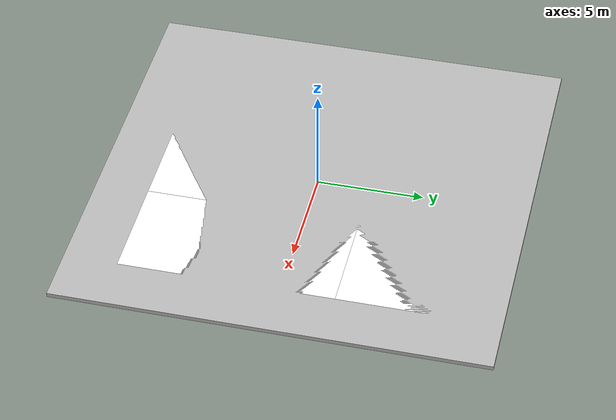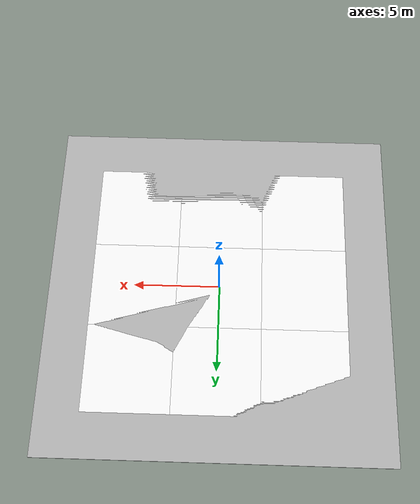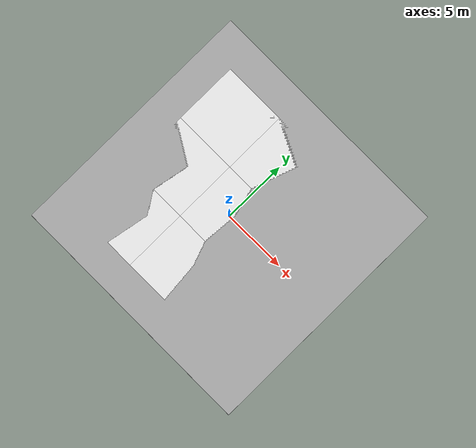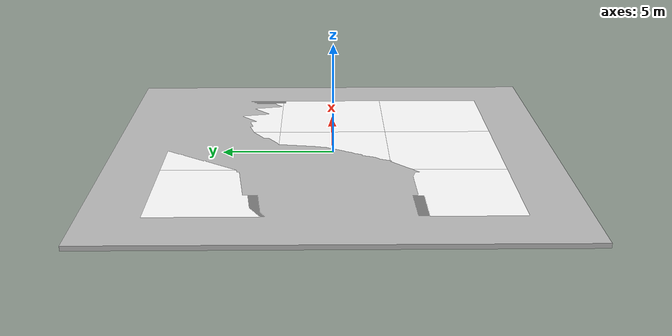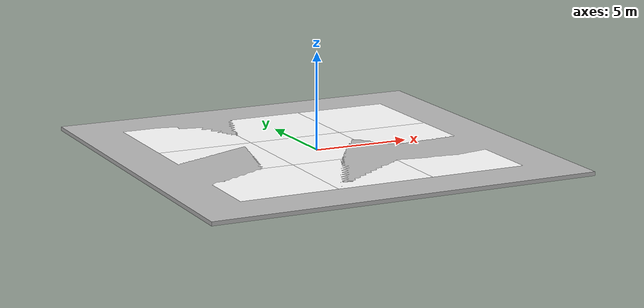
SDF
<?xml version="1.0" ?>
<sdf version="1.6">
  <world name="default">
    <!-- Include mud_box model using absolute path -->
    <include>
      <pose>0 0 0 0 0 0</pose>
      <uri>/home/ubuntu/github/Omni-Directional-Mobile-Robot/src/robotpadi_description/models/mud_box/mud_box.sdf</uri>
    </include>

    <!-- Include maize model using absolute path -->
    <include>
      <pose>0 0 0 0 0 0</pose>
      <uri>/home/ubuntu/github/Omni-Directional-Mobile-Robot/src/robotpadi_description/models/maize_01/model.sdf</uri>
    </include>
  </world>
</sdf>

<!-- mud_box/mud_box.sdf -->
<sdf version="1.9">
  <model name="mud_box_3x3">
    <static>true</static>

    <!-- Row 1 -->
    <link name="link_1_1">
      <pose>-5 5 0 0 0 0</pose>
      <collision name="collision">
        <geometry>
          <box>
            <size>5 5 0.2</size>
          </box>
        </geometry>
      </collision>
      <visual name="visual">
        <cast_shadows>false</cast_shadows>
        <geometry>
          <box><size>5 5 0.2</size></box>
        </geometry>
        <material>
          <diffuse>1 1 1 1</diffuse>
          <specular>0.1 0.1 0.1 1</specular>
          <pbr>
            <metal>
              <albedo_map>materials/textures/mud.png</albedo_map>
            </metal>
          </pbr>
        </material>
      </visual>
    </link>

    <link name="link_1_2">
      <pose>0 5 0 0 0 0</pose>
      <collision name="collision">
        <geometry>
          <box>
            <size>5 5 0.2</size>
          </box>
        </geometry>
      </collision>
      <visual name="visual">
        <cast_shadows>false</cast_shadows>
        <geometry>
          <box><size>5 5 0.2</size></box>
        </geometry>
        <material>
          <diffuse>1 1 1 1</diffuse>
          <specular>0.1 0.1 0.1 1</specular>
          <pbr>
            <metal>
              <albedo_map>materials/textures/mud.png</albedo_map>
            </metal>
          </pbr>
        </material>
      </visual>
    </link>

    <link name="link_1_3">
      <pose>5 5 0 0 0 0</pose>
      <collision name="collision">
        <geometry>
          <box>
            <size>5 5 0.2</size>
          </box>
        </geometry>
      </collision>
      <visual name="visual">
        <cast_shadows>false</cast_shadows>
        <geometry>
          <box><size>5 5 0.2</size></box>
        </geometry>
        <material>
          <diffuse>1 1 1 1</diffuse>
          <specular>0.1 0.1 0.1 1</specular>
          <pbr>
            <metal>
              <albedo_map>materials/textures/mud.png</albedo_map>
            </metal>
          </pbr>
        </material>
      </visual>
    </link>

    <!-- Row 2 -->
    <link name="link_2_1">
      <pose>-5 0 0 0 0 0</pose>
      <collision name="collision">
        <geometry>
          <box>
            <size>5 5 0.2</size>
          </box>
        </geometry>
      </collision>
      <visual name="visual">
        <cast_shadows>false</cast_shadows>
        <geometry>
          <box><size>5 5 0.2</size></box>
        </geometry>
        <material>
          <diffuse>1 1 1 1</diffuse>
          <specular>0.1 0.1 0.1 1</specular>
          <pbr>
            <metal>
              <albedo_map>materials/textures/mud.png</albedo_map>
            </metal>
          </pbr>
        </material>
      </visual>
    </link>

    <link name="link_2_2">
      <pose>0 0 0 0 0 0</pose>
      <collision name="collision">
        <geometry>
          <box>
            <size>5 5 0.2</size>
          </box>
        </geometry>
      </collision>
      <visual name="visual">
        <cast_shadows>false</cast_shadows>
        <geometry>
          <box><size>5 5 0.2</size></box>
        </geometry>
        <material>
          <diffuse>1 1 1 1</diffuse>
          <specular>0.1 0.1 0.1 1</specular>
          <pbr>
            <metal>
              <albedo_map>materials/textures/mud.png</albedo_map>
            </metal>
          </pbr>
        </material>
      </visual>
    </link>

    <link name="link_2_3">
      <pose>5 0 0 0 0 0</pose>
      <collision name="collision">
        <geometry>
          <box>
            <size>5 5 0.2</size>
          </box>
        </geometry>
      </collision>
      <visual name="visual">
        <cast_shadows>false</cast_shadows>
        <geometry>
          <box><size>5 5 0.2</size></box>
        </geometry>
        <material>
          <diffuse>1 1 1 1</diffuse>
          <specular>0.1 0.1 0.1 1</specular>
          <pbr>
            <metal>
              <albedo_map>materials/textures/mud.png</albedo_map>
            </metal>
          </pbr>
        </material>
      </visual>
    </link>

    <!-- Row 3 -->
    <link name="link_3_1">
      <pose>-5 -5 0 0 0 0</pose>
      <collision name="collision">
        <geometry>
          <box>
            <size>5 5 0.2</size>
          </box>
        </geometry>
      </collision>
      <visual name="visual">
        <cast_shadows>false</cast_shadows>
        <geometry>
          <box><size>5 5 0.2</size></box>
        </geometry>
        <material>
          <diffuse>1 1 1 1</diffuse>
          <specular>0.1 0.1 0.1 1</specular>
          <pbr>
            <metal>
              <albedo_map>materials/textures/mud.png</albedo_map>
            </metal>
          </pbr>
        </material>
      </visual>
    </link>

    <link name="link_3_2">
      <pose>0 -5 0 0 0 0</pose>
      <collision name="collision">
        <geometry>
          <box>
            <size>5 5 0.2</size>
          </box>
        </geometry>
      </collision>
      <visual name="visual">
        <cast_shadows>false</cast_shadows>
        <geometry>
          <box><size>5 5 0.2</size></box>
        </geometry>
        <material>
          <diffuse>1 1 1 1</diffuse>
          <specular>0.1 0.1 0.1 1</specular>
          <pbr>
            <metal>
              <albedo_map>materials/textures/mud.png</albedo_map>
            </metal>
          </pbr>
        </material>
      </visual>
    </link>

    <link name="link_3_3">
      <pose>5 -5 0 0 0 0</pose>
      <collision name="collision">
        <geometry>
          <box>
            <size>5 5 0.2</size>
          </box>
        </geometry>
      </collision>
      <visual name="visual">
        <cast_shadows>false</cast_shadows>
        <geometry>
          <box><size>5 5 0.2</size></box>
        </geometry>
        <material>
          <diffuse>1 1 1 1</diffuse>
          <specular>0.1 0.1 0.1 1</specular>
          <pbr>
            <metal>
              <albedo_map>materials/textures/mud.png</albedo_map>
            </metal>
          </pbr>
        </material>
      </visual>
    </link>
  </model>
</sdf>

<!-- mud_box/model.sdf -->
<sdf version="1.5">
  <model name="mud_box">
    <static>true</static>
    <link name="link">
      <collision name="collision">
        <geometry>
          <box>
            <size>20 20 0.2</size>
          </box>
        </geometry>
      </collision>
      <visual name="visual">
        <pose>0 0 0 0 0 0</pose>
        <cast_shadows>false</cast_shadows>
        <geometry>
          <box>
            <size>20 20 0.2</size>
          </box>
        </geometry>
        <material>
          <script>
            <uri>model://Mud_Box/materials/scripts</uri>
            <uri>model://Mud_Box/materials/textures</uri>
            <name>vrc/mud</name>
          </script>
        </material>
      </visual>
    </link>
  </model>
</sdf>
